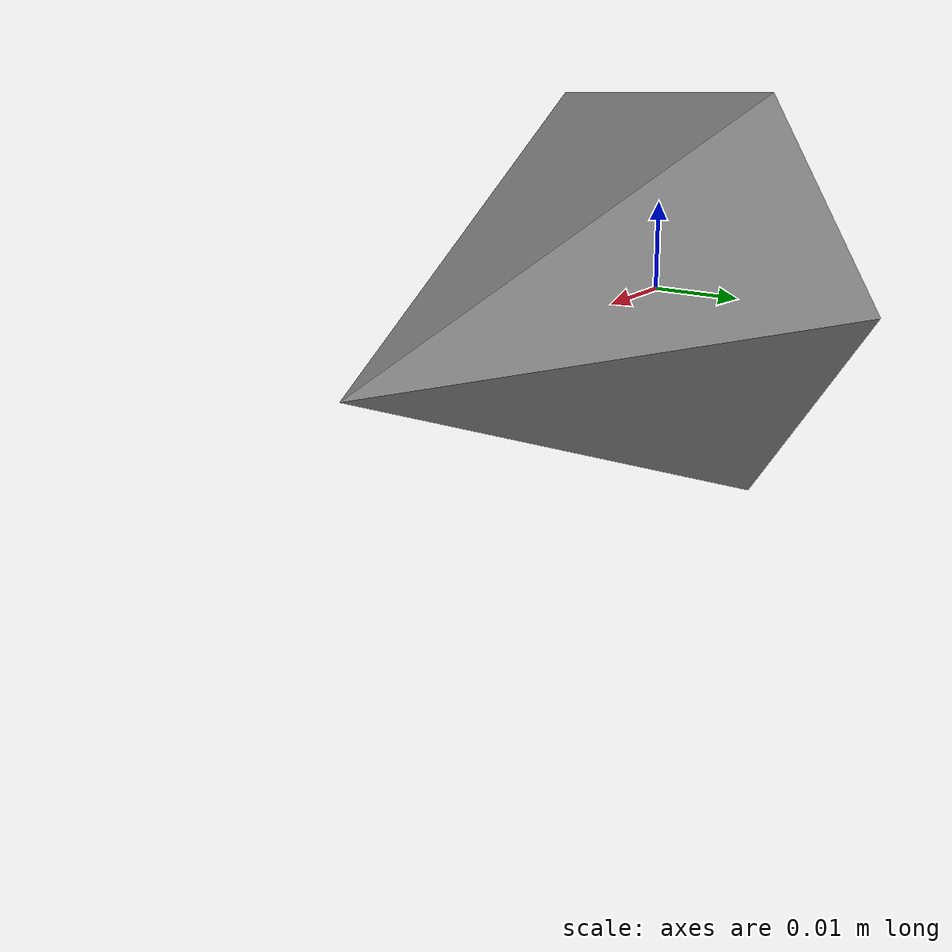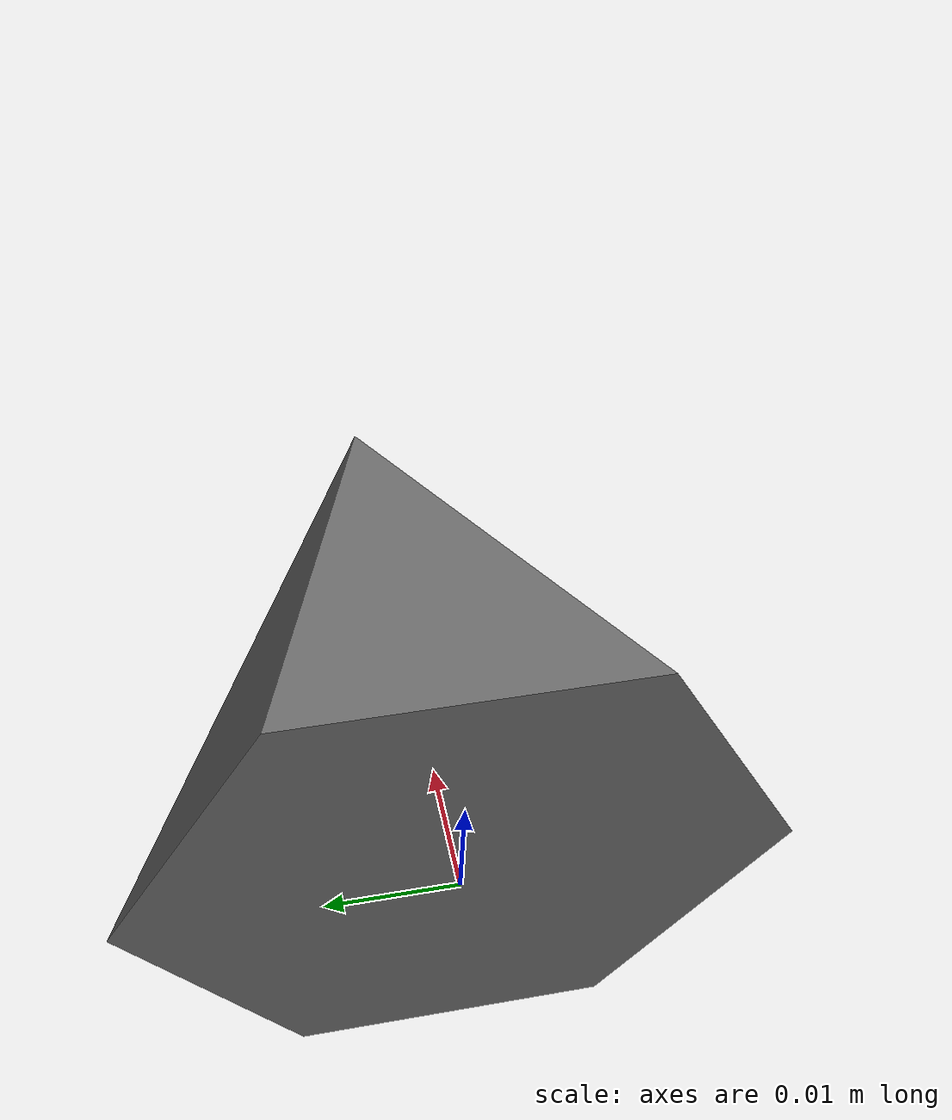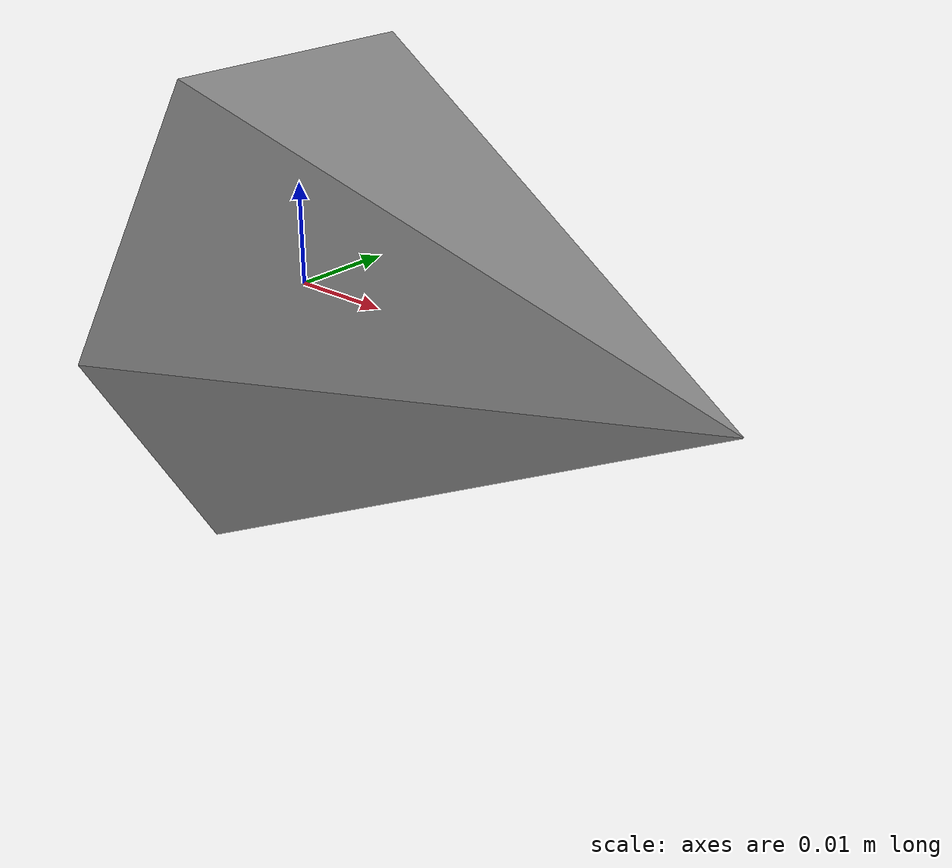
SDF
<?xml version="1.0"?>
<sdf version="1.7">
  <model name="cone">
    <link name="cone">
      <inertial>
        <pose>0.0126 0 0 0 0 0</pose>
        <mass>0.0345</mass>
        <!-- Solid cube inertia:
             I = (1/6) m a²
             a = 0.0254 m
             m = 0.0345 kg
        -->
        <inertia>
          <ixx>5.3763e-06</ixx>
          <iyy>5.3763e-06</iyy>
          <izz>5.3763e-06</izz>
          <ixy>0</ixy>
          <ixz>0</ixz>
          <iyz>0</iyz>
        </inertia>
      </inertial>

      <visual name="cone_visual">
        <pose>0 0 0 0 0 0</pose>
        <geometry>
          <mesh>
              <uri>cone.obj</uri>
            </mesh>
        </geometry>
        <material>
          <diffuse>0.5 0.5 0.5 1</diffuse>
        </material>
      </visual>

      <collision name="cone_collision">
        <pose>0 0 0 0 0 0</pose>
        <geometry>
          <mesh>
            <uri>cone.obj</uri>
          </mesh>
        </geometry>
        <drake:proximity_properties xmlns:drake="uri:drake">
          <drake:compliant_hydroelastic/>
          <drake:hydroelastic_modulus>3.0e9</drake:hydroelastic_modulus>
          <drake:mesh_resolution_hint>0.025</drake:mesh_resolution_hint>
          <drake:hunt_crossley_dissipation>10</drake:hunt_crossley_dissipation>
          <drake:mu_dynamic>0.3</drake:mu_dynamic>
          <drake:point_contact_stiffness>1e7</drake:point_contact_stiffness>
        </drake:proximity_properties>
      </collision>

      <collision name="corner_0">
        <pose>0 -0.0254 0 0 0 0</pose>
        <geometry>
          <sphere>
            <radius>0.0001</radius>
          </sphere>
        </geometry>
        <drake:proximity_properties xmlns:drake="uri:drake">
          <drake:compliant_hydroelastic/>
          <drake:hydroelastic_modulus>3.0e9</drake:hydroelastic_modulus>
          <drake:mesh_resolution_hint>0.025</drake:mesh_resolution_hint>
          <drake:hunt_crossley_dissipation>10</drake:hunt_crossley_dissipation>
          <drake:mu_dynamic>0.3</drake:mu_dynamic>
          <drake:point_contact_stiffness>1e7</drake:point_contact_stiffness>
        </drake:proximity_properties>
      </collision>

      <collision name="corner_1">
        <pose>0 0.0254 0 0 0 0</pose>
        <geometry>
          <sphere>
            <radius>0.0001</radius>
          </sphere>
        </geometry>
        <drake:proximity_properties xmlns:drake="uri:drake">
          <drake:compliant_hydroelastic/>
          <drake:hydroelastic_modulus>3.0e9</drake:hydroelastic_modulus>
          <drake:mesh_resolution_hint>0.025</drake:mesh_resolution_hint>
          <drake:hunt_crossley_dissipation>10</drake:hunt_crossley_dissipation>
          <drake:mu_dynamic>0.3</drake:mu_dynamic>
          <drake:point_contact_stiffness>1e7</drake:point_contact_stiffness>
        </drake:proximity_properties>
      </collision>

      <collision name="corner_2">
        <pose>0 -0.0127 -0.022 0 0 0</pose>
        <geometry>
          <sphere>
            <radius>0.0001</radius>
          </sphere>
        </geometry>
        <drake:proximity_properties xmlns:drake="uri:drake">
          <drake:compliant_hydroelastic/>
          <drake:hydroelastic_modulus>3.0e9</drake:hydroelastic_modulus>
          <drake:mesh_resolution_hint>0.025</drake:mesh_resolution_hint>
          <drake:hunt_crossley_dissipation>10</drake:hunt_crossley_dissipation>
          <drake:mu_dynamic>0.3</drake:mu_dynamic>
          <drake:point_contact_stiffness>1e7</drake:point_contact_stiffness>
        </drake:proximity_properties>
      </collision>

      <collision name="corner_3">
        <pose>0 -0.0127 0.022 0 0 0</pose>
        <geometry>
          <sphere>
            <radius>0.0001</radius>
          </sphere>
        </geometry>
        <drake:proximity_properties xmlns:drake="uri:drake">
          <drake:compliant_hydroelastic/>
          <drake:hydroelastic_modulus>3.0e9</drake:hydroelastic_modulus>
          <drake:mesh_resolution_hint>0.025</drake:mesh_resolution_hint>
          <drake:hunt_crossley_dissipation>10</drake:hunt_crossley_dissipation>
          <drake:mu_dynamic>0.3</drake:mu_dynamic>
          <drake:point_contact_stiffness>1e7</drake:point_contact_stiffness>
        </drake:proximity_properties>
      </collision>

      <collision name="corner_4">
        <pose>0 0.0127 0.022 0 0 0</pose>
        <geometry>
          <sphere>
            <radius>0.0001</radius>
          </sphere>
        </geometry>
        <drake:proximity_properties xmlns:drake="uri:drake">
          <drake:compliant_hydroelastic/>
          <drake:hydroelastic_modulus>3.0e9</drake:hydroelastic_modulus>
          <drake:mesh_resolution_hint>0.025</drake:mesh_resolution_hint>
          <drake:hunt_crossley_dissipation>10</drake:hunt_crossley_dissipation>
          <drake:mu_dynamic>0.3</drake:mu_dynamic>
          <drake:point_contact_stiffness>1e7</drake:point_contact_stiffness>
        </drake:proximity_properties>
      </collision>

      <collision name="corner_5">
        <pose>0 0.0127 -0.022 0 0 0</pose>
        <geometry>
          <sphere>
            <radius>0.0001</radius>
          </sphere>
        </geometry>
      <drake:proximity_properties xmlns:drake="uri:drake">
          <drake:compliant_hydroelastic/>
          <drake:hydroelastic_modulus>3.0e9</drake:hydroelastic_modulus>
          <drake:mesh_resolution_hint>0.025</drake:mesh_resolution_hint>
          <drake:hunt_crossley_dissipation>10</drake:hunt_crossley_dissipation>
          <drake:mu_dynamic>0.3</drake:mu_dynamic>
          <drake:point_contact_stiffness>1e7</drake:point_contact_stiffness>
        </drake:proximity_properties>
      </collision>

      <collision name="corner_6">
        <pose> 0.0494 0 0 0 0 0</pose>
        <geometry>
          <sphere>
            <radius>0.002</radius>
          </sphere>
        </geometry>
        <drake:proximity_properties xmlns:drake="uri:drake">
          <drake:compliant_hydroelastic/>
          <drake:hydroelastic_modulus>3.0e9</drake:hydroelastic_modulus>
          <drake:mesh_resolution_hint>0.002</drake:mesh_resolution_hint>
          <drake:hunt_crossley_dissipation>10</drake:hunt_crossley_dissipation>
          <drake:mu_dynamic>0.3</drake:mu_dynamic>
          <drake:point_contact_stiffness>1e7</drake:point_contact_stiffness>
        </drake:proximity_properties>
      </collision>
    </link>
  </model>
</sdf>
